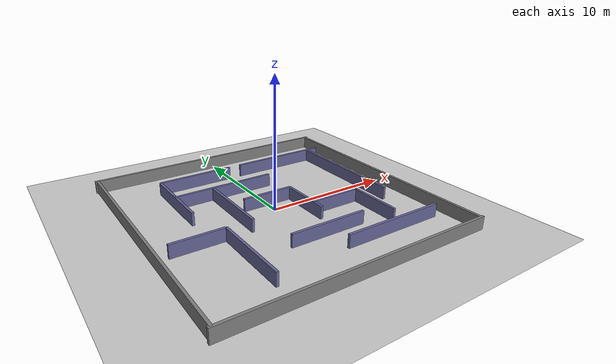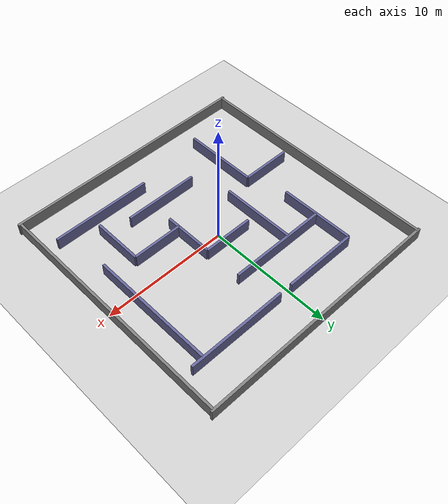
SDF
<?xml version="1.0" ?>
<sdf version="1.8">
  <world name="maze_world">
    <!-- Physics settings for Gazebo Harmonic -->
    <physics name="4ms" type="ignored">
      <max_step_size>0.004</max_step_size>
      <real_time_factor>1.0</real_time_factor>
      <real_time_update_rate>250</real_time_update_rate>
    </physics>
    <plugin filename="gz-sim-physics-system" name="gz::sim::systems::Physics"/>
    <plugin filename="gz-sim-sensors-system" name="gz::sim::systems::Sensors">
      <render_engine>ogre2</render_engine>
    </plugin>
    <plugin filename="gz-sim-scene-broadcaster-system" name="gz::sim::systems::SceneBroadcaster"/>
    <plugin filename="gz-sim-user-commands-system" name="gz::sim::systems::UserCommands"/>

    <!-- Light -->
    <light type="directional" name="sun">
      <cast_shadows>true</cast_shadows>
      <pose>0 0 10 0 0 0</pose>
      <diffuse>0.8 0.8 0.8 1</diffuse>
      <specular>0.2 0.2 0.2 1</specular>
      <attenuation>
        <range>1000</range>
        <constant>0.9</constant>
        <linear>0.01</linear>
        <quadratic>0.001</quadratic>
      </attenuation>
      <direction>-0.5 0.1 -0.9</direction>
    </light>

    <!-- Ground Plane -->
    <model name="ground_plane">
      <static>true</static>
      <link name="link">
        <collision name="collision">
          <geometry>
            <plane>
              <normal>0 0 1</normal>
              <size>100 100</size>
            </plane>
          </geometry>
        </collision>
        <visual name="visual">
          <geometry>
            <plane>
              <normal>0 0 1</normal>
              <size>100 100</size>
            </plane>
          </geometry>
          <material>
            <ambient>0.8 0.8 0.8 1</ambient>
            <diffuse>0.8 0.8 0.8 1</diffuse>
          </material>
        </visual>
      </link>
    </model>

    <!-- ==================== MAZE WALLS ==================== -->

    <!-- Outer Walls -->
    <!-- North Wall -->
    <model name="wall_north">
      <static>true</static>
      <pose>0 10 0.5 0 0 0</pose>
      <link name="link">
        <collision name="collision">
          <geometry><box><size>20.4 0.2 1.0</size></box></geometry>
        </collision>
        <visual name="visual">
          <geometry><box><size>20.4 0.2 1.0</size></box></geometry>
          <material><ambient>0.5 0.5 0.5 1</ambient><diffuse>0.5 0.5 0.5 1</diffuse></material>
        </visual>
      </link>
    </model>

    <!-- South Wall -->
    <model name="wall_south">
      <static>true</static>
      <pose>0 -10 0.5 0 0 0</pose>
      <link name="link">
        <collision name="collision">
          <geometry><box><size>20.4 0.2 1.0</size></box></geometry>
        </collision>
        <visual name="visual">
          <geometry><box><size>20.4 0.2 1.0</size></box></geometry>
          <material><ambient>0.5 0.5 0.5 1</ambient><diffuse>0.5 0.5 0.5 1</diffuse></material>
        </visual>
      </link>
    </model>

    <!-- East Wall -->
    <model name="wall_east">
      <static>true</static>
      <pose>10 0 0.5 0 0 0</pose>
      <link name="link">
        <collision name="collision">
          <geometry><box><size>0.2 20.0 1.0</size></box></geometry>
        </collision>
        <visual name="visual">
          <geometry><box><size>0.2 20.0 1.0</size></box></geometry>
          <material><ambient>0.5 0.5 0.5 1</ambient><diffuse>0.5 0.5 0.5 1</diffuse></material>
        </visual>
      </link>
    </model>

    <!-- West Wall -->
    <model name="wall_west">
      <static>true</static>
      <pose>-10 0 0.5 0 0 0</pose>
      <link name="link">
        <collision name="collision">
          <geometry><box><size>0.2 20.0 1.0</size></box></geometry>
        </collision>
        <visual name="visual">
          <geometry><box><size>0.2 20.0 1.0</size></box></geometry>
          <material><ambient>0.5 0.5 0.5 1</ambient><diffuse>0.5 0.5 0.5 1</diffuse></material>
        </visual>
      </link>
    </model>

    <!-- Inner Maze Walls -->
    <!-- Horizontal Wall 1 (top area) -->
    <model name="maze_h1">
      <static>true</static>
      <pose>-3 7 0.5 0 0 0</pose>
      <link name="link">
        <collision name="collision">
          <geometry><box><size>6.0 0.2 1.0</size></box></geometry>
        </collision>
        <visual name="visual">
          <geometry><box><size>6.0 0.2 1.0</size></box></geometry>
          <material><ambient>0.4 0.4 0.6 1</ambient><diffuse>0.4 0.4 0.6 1</diffuse></material>
        </visual>
      </link>
    </model>

    <!-- Horizontal Wall 2 -->
    <model name="maze_h2">
      <static>true</static>
      <pose>5 7 0.5 0 0 0</pose>
      <link name="link">
        <collision name="collision">
          <geometry><box><size>8.0 0.2 1.0</size></box></geometry>
        </collision>
        <visual name="visual">
          <geometry><box><size>8.0 0.2 1.0</size></box></geometry>
          <material><ambient>0.4 0.4 0.6 1</ambient><diffuse>0.4 0.4 0.6 1</diffuse></material>
        </visual>
      </link>
    </model>

    <!-- Vertical Wall 1 -->
    <model name="maze_v1">
      <static>true</static>
      <pose>-6 4 0.5 0 0 0</pose>
      <link name="link">
        <collision name="collision">
          <geometry><box><size>0.2 6.0 1.0</size></box></geometry>
        </collision>
        <visual name="visual">
          <geometry><box><size>0.2 6.0 1.0</size></box></geometry>
          <material><ambient>0.4 0.4 0.6 1</ambient><diffuse>0.4 0.4 0.6 1</diffuse></material>
        </visual>
      </link>
    </model>

    <!-- Horizontal Wall 3 -->
    <model name="maze_h3">
      <static>true</static>
      <pose>-2 4 0.5 0 0 0</pose>
      <link name="link">
        <collision name="collision">
          <geometry><box><size>8.0 0.2 1.0</size></box></geometry>
        </collision>
        <visual name="visual">
          <geometry><box><size>8.0 0.2 1.0</size></box></geometry>
          <material><ambient>0.4 0.4 0.6 1</ambient><diffuse>0.4 0.4 0.6 1</diffuse></material>
        </visual>
      </link>
    </model>

    <!-- Vertical Wall 2 -->
    <model name="maze_v2">
      <static>true</static>
      <pose>-3 1 0.5 0 0 0</pose>
      <link name="link">
        <collision name="collision">
          <geometry><box><size>0.2 6.0 1.0</size></box></geometry>
        </collision>
        <visual name="visual">
          <geometry><box><size>0.2 6.0 1.0</size></box></geometry>
          <material><ambient>0.4 0.4 0.6 1</ambient><diffuse>0.4 0.4 0.6 1</diffuse></material>
        </visual>
      </link>
    </model>

    <!-- Horizontal Wall 4 -->
    <model name="maze_h4">
      <static>true</static>
      <pose>0 1 0.5 0 0 0</pose>
      <link name="link">
        <collision name="collision">
          <geometry><box><size>4.0 0.2 1.0</size></box></geometry>
        </collision>
        <visual name="visual">
          <geometry><box><size>4.0 0.2 1.0</size></box></geometry>
          <material><ambient>0.4 0.4 0.6 1</ambient><diffuse>0.4 0.4 0.6 1</diffuse></material>
        </visual>
      </link>
    </model>

    <!-- Vertical Wall 3 -->
    <model name="maze_v3">
      <static>true</static>
      <pose>2 -1 0.5 0 0 0</pose>
      <link name="link">
        <collision name="collision">
          <geometry><box><size>0.2 4.0 1.0</size></box></geometry>
        </collision>
        <visual name="visual">
          <geometry><box><size>0.2 4.0 1.0</size></box></geometry>
          <material><ambient>0.4 0.4 0.6 1</ambient><diffuse>0.4 0.4 0.6 1</diffuse></material>
        </visual>
      </link>
    </model>

    <!-- Horizontal Wall 5 -->
    <model name="maze_h5">
      <static>true</static>
      <pose>4 -2 0.5 0 0 0</pose>
      <link name="link">
        <collision name="collision">
          <geometry><box><size>4.0 0.2 1.0</size></box></geometry>
        </collision>
        <visual name="visual">
          <geometry><box><size>4.0 0.2 1.0</size></box></geometry>
          <material><ambient>0.4 0.4 0.6 1</ambient><diffuse>0.4 0.4 0.6 1</diffuse></material>
        </visual>
      </link>
    </model>

    <!-- Vertical Wall 4 -->
    <model name="maze_v4">
      <static>true</static>
      <pose>6 -4 0.5 0 0 0</pose>
      <link name="link">
        <collision name="collision">
          <geometry><box><size>0.2 4.0 1.0</size></box></geometry>
        </collision>
        <visual name="visual">
          <geometry><box><size>0.2 4.0 1.0</size></box></geometry>
          <material><ambient>0.4 0.4 0.6 1</ambient><diffuse>0.4 0.4 0.6 1</diffuse></material>
        </visual>
      </link>
    </model>

    <!-- Horizontal Wall 6 -->
    <model name="maze_h6">
      <static>true</static>
      <pose>1 -5 0.5 0 0 0</pose>
      <link name="link">
        <collision name="collision">
          <geometry><box><size>6.0 0.2 1.0</size></box></geometry>
        </collision>
        <visual name="visual">
          <geometry><box><size>6.0 0.2 1.0</size></box></geometry>
          <material><ambient>0.4 0.4 0.6 1</ambient><diffuse>0.4 0.4 0.6 1</diffuse></material>
        </visual>
      </link>
    </model>

    <!-- Vertical Wall 5 -->
    <model name="maze_v5">
      <static>true</static>
      <pose>-5 -5 0.5 0 0 0</pose>
      <link name="link">
        <collision name="collision">
          <geometry><box><size>0.2 6.0 1.0</size></box></geometry>
        </collision>
        <visual name="visual">
          <geometry><box><size>0.2 6.0 1.0</size></box></geometry>
          <material><ambient>0.4 0.4 0.6 1</ambient><diffuse>0.4 0.4 0.6 1</diffuse></material>
        </visual>
      </link>
    </model>

    <!-- Horizontal Wall 7 -->
    <model name="maze_h7">
      <static>true</static>
      <pose>5 -7 0.5 0 0 0</pose>
      <link name="link">
        <collision name="collision">
          <geometry><box><size>8.0 0.2 1.0</size></box></geometry>
        </collision>
        <visual name="visual">
          <geometry><box><size>8.0 0.2 1.0</size></box></geometry>
          <material><ambient>0.4 0.4 0.6 1</ambient><diffuse>0.4 0.4 0.6 1</diffuse></material>
        </visual>
      </link>
    </model>

    <!-- Vertical Wall 6 (right side inner) -->
    <model name="maze_v6">
      <static>true</static>
      <pose>8 2 0.5 0 0 0</pose>
      <link name="link">
        <collision name="collision">
          <geometry><box><size>0.2 10.0 1.0</size></box></geometry>
        </collision>
        <visual name="visual">
          <geometry><box><size>0.2 10.0 1.0</size></box></geometry>
          <material><ambient>0.4 0.4 0.6 1</ambient><diffuse>0.4 0.4 0.6 1</diffuse></material>
        </visual>
      </link>
    </model>

    <!-- Additional complexity - L-shaped obstacle -->
    <model name="maze_L1">
      <static>true</static>
      <pose>-7 -2 0.5 0 0 0</pose>
      <link name="link">
        <collision name="collision">
          <geometry><box><size>4.0 0.2 1.0</size></box></geometry>
        </collision>
        <visual name="visual">
          <geometry><box><size>4.0 0.2 1.0</size></box></geometry>
          <material><ambient>0.4 0.4 0.6 1</ambient><diffuse>0.4 0.4 0.6 1</diffuse></material>
        </visual>
      </link>
    </model>

  </world>
</sdf>
